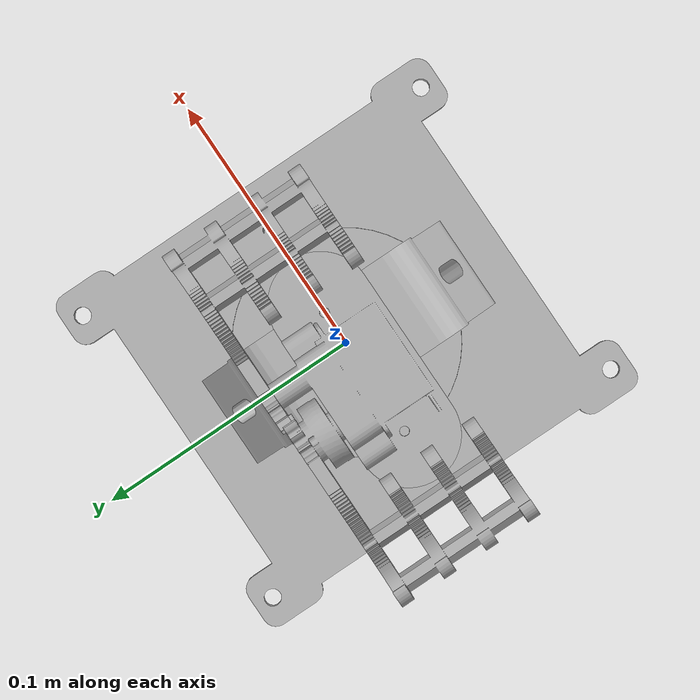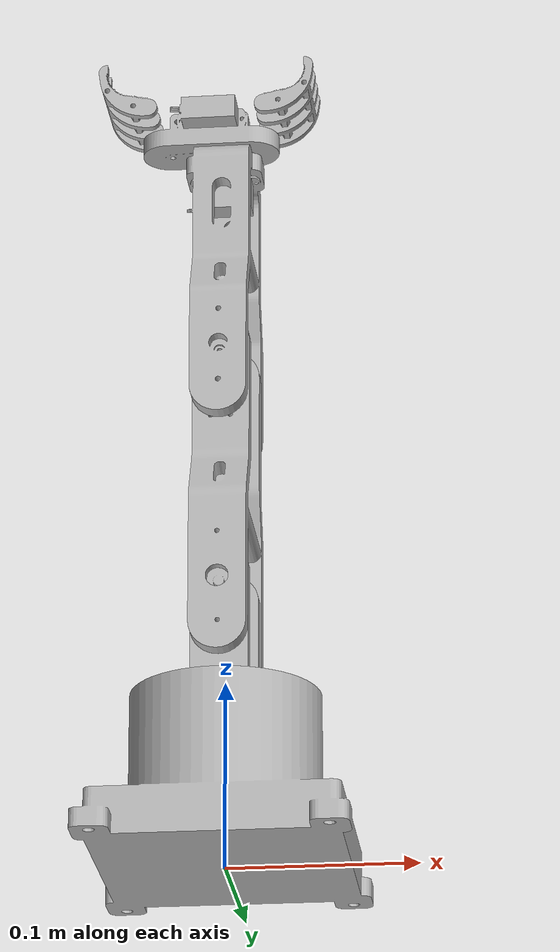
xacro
<?xml version="1.0" ?>
<robot name="usf_robot" xmlns:xacro="http://www.ros.org/wiki/xacro">

<xacro:include filename="$(find usf_robot_description)/urdf/materials.xacro" />
<xacro:include filename="$(find usf_robot_description)/urdf/usf_robot.trans" />
<xacro:include filename="$(find usf_robot_description)/urdf/usf_robot.gazebo" />
<link name="base_link">
  <inertial>
    <origin xyz="4.095840186019689e-05 -0.00047837113585616297 0.030465846604467023" rpy="0 0 0"/>
    <mass value="6.2514798322801415"/>
    <inertia ixx="0.01073" iyy="0.010393" izz="0.014172" ixy="-0.0" iyz="8e-06" ixz="0.0"/>
  </inertial>
  <visual>
    <origin xyz="0 0 0" rpy="0 0 0"/>
    <geometry>
      <mesh filename="file://$(find usf_robot_description)/meshes/base_link.stl" scale="0.001 0.001 0.001"/>
    </geometry>
    <material name="silver"/>
  </visual>
  <collision>
    <origin xyz="0 0 0" rpy="0 0 0"/>
    <geometry>
      <mesh filename="file://$(find usf_robot_description)/meshes/base_link.stl" scale="0.001 0.001 0.001"/>
    </geometry>
  </collision>
</link>

<link name="link0_1">
  <inertial>
    <origin xyz="-2.716259298227874e-06 -0.0010380049259447563 0.024075797292657686" rpy="0 0 0"/>
    <mass value="1.1929271090807336"/>
    <inertia ixx="0.001533" iyy="0.001298" izz="0.000904" ixy="1e-06" iyz="3.9e-05" ixz="-0.0"/>
  </inertial>
  <visual>
    <origin xyz="0.0002 0.000356 -0.07854" rpy="0 0 0"/>
    <geometry>
      <mesh filename="file://$(find usf_robot_description)/meshes/link0_1.stl" scale="0.001 0.001 0.001"/>
    </geometry>
    <material name="silver"/>
  </visual>
  <collision>
    <origin xyz="0.0002 0.000356 -0.07854" rpy="0 0 0"/>
    <geometry>
      <mesh filename="file://$(find usf_robot_description)/meshes/link0_1.stl" scale="0.001 0.001 0.001"/>
    </geometry>
  </collision>
</link>

<link name="link1_1">
  <inertial>
    <origin xyz="-0.1802469603530418 0.20467584818746778 -0.31872975492036304" rpy="0 0 0"/>
    <mass value="0.19172228733298213"/>
    <inertia ixx="0.000679" iyy="0.000532" izz="0.000173" ixy="0.0" iyz="1.7e-05" ixz="-1e-06"/>
  </inertial>
  <visual>
    <origin xyz="-0.180211 0.205134 -0.529867" rpy="0 0 0"/>
    <geometry>
      <mesh filename="file://$(find usf_robot_description)/meshes/link1_1.stl" scale="0.001 0.001 0.001"/>
    </geometry>
    <material name="silver"/>
  </visual>
  <collision>
    <origin xyz="-0.180211 0.205134 -0.529867" rpy="0 0 0"/>
    <geometry>
      <mesh filename="file://$(find usf_robot_description)/meshes/link1_1.stl" scale="0.001 0.001 0.001"/>
    </geometry>
  </collision>
</link>

<link name="link2_1">
  <inertial>
    <origin xyz="-0.0008459448150377875 0.03487723194290493 0.05901407198161318" rpy="0 0 0"/>
    <mass value="0.9310977870000888"/>
    <inertia ixx="0.002972" iyy="0.002261" izz="0.000867" ixy="-0.0" iyz="-2e-06" ixz="1e-05"/>
  </inertial>
  <visual>
    <origin xyz="-0.000411 0.034567 -0.272461" rpy="0 0 0"/>
    <geometry>
      <mesh filename="file://$(find usf_robot_description)/meshes/link2_1.stl" scale="0.001 0.001 0.001"/>
    </geometry>
    <material name="silver"/>
  </visual>
  <collision>
    <origin xyz="-0.000411 0.034567 -0.272461" rpy="0 0 0"/>
    <geometry>
      <mesh filename="file://$(find usf_robot_description)/meshes/link2_1.stl" scale="0.001 0.001 0.001"/>
    </geometry>
  </collision>
</link>

<link name="wrist_1">
  <inertial>
    <origin xyz="-0.0005413092492828724 0.0012694599894110235 0.01735230955560413" rpy="0 0 0"/>
    <mass value="0.27580026748282094"/>
    <inertia ixx="4.6e-05" iyy="0.000102" izz="9.7e-05" ixy="1e-06" iyz="-3e-06" ixz="1e-06"/>
  </inertial>
  <visual>
    <origin xyz="0.009156 -6.5e-05 -0.40079" rpy="0 0 0"/>
    <geometry>
      <mesh filename="file://$(find usf_robot_description)/meshes/wrist_1.stl" scale="0.001 0.001 0.001"/>
    </geometry>
    <material name="silver"/>
  </visual>
  <collision>
    <origin xyz="0.009156 -6.5e-05 -0.40079" rpy="0 0 0"/>
    <geometry>
      <mesh filename="file://$(find usf_robot_description)/meshes/wrist_1.stl" scale="0.001 0.001 0.001"/>
    </geometry>
  </collision>
</link>

<link name="claw0_1">
  <inertial>
    <origin xyz="0.029746498963837457 -0.015181296968975203 0.0037018851488843096" rpy="0 0 0"/>
    <mass value="0.06042467247708934"/>
    <inertia ixx="1.9e-05" iyy="1.7e-05" izz="2.8e-05" ixy="6e-06" iyz="1e-06" ixz="-4e-06"/>
  </inertial>
  <visual>
    <origin xyz="0.001497 -0.024737 -0.429729" rpy="0 0 0"/>
    <geometry>
      <mesh filename="file://$(find usf_robot_description)/meshes/claw0_1.stl" scale="0.001 0.001 0.001"/>
    </geometry>
    <material name="silver"/>
  </visual>
  <collision>
    <origin xyz="0.001497 -0.024737 -0.429729" rpy="0 0 0"/>
    <geometry>
      <mesh filename="file://$(find usf_robot_description)/meshes/claw0_1.stl" scale="0.001 0.001 0.001"/>
    </geometry>
  </collision>
</link>

<link name="claw1_1">
  <inertial>
    <origin xyz="-0.024769673493672317 -0.006850523309569284 0.0028712566060522526" rpy="0 0 0"/>
    <mass value="0.07705542391594017"/>
    <inertia ixx="2.2e-05" iyy="3.1e-05" izz="4.3e-05" ixy="-1e-05" iyz="1e-06" ixz="5e-06"/>
  </inertial>
  <visual>
    <origin xyz="0.017623 -0.016646 -0.42967" rpy="0 0 0"/>
    <geometry>
      <mesh filename="file://$(find usf_robot_description)/meshes/claw1_1.stl" scale="0.001 0.001 0.001"/>
    </geometry>
    <material name="silver"/>
  </visual>
  <collision>
    <origin xyz="0.017623 -0.016646 -0.42967" rpy="0 0 0"/>
    <geometry>
      <mesh filename="file://$(find usf_robot_description)/meshes/claw1_1.stl" scale="0.001 0.001 0.001"/>
    </geometry>
  </collision>
</link>

<joint name="link0_to_base_link" type="revolute">
  <origin xyz="-0.0002 -0.000356 0.07854" rpy="0 0 0"/>
  <parent link="base_link"/>
  <child link="link0_1"/>
  <axis xyz="-0.0 0.0 1.0"/>
  <limit upper="4.712389" lower="0.0" effort="100" velocity="100"/>
</joint>

<joint name="link1_to_link0" type="revolute">
  <origin xyz="0.180411 -0.204778 0.451327" rpy="0 0 0"/>
  <parent link="link0_1"/>
  <child link="link1_1"/>
  <axis xyz="0.0 -1.0 -0.0"/>
  <limit upper="1.570796" lower="-1.570796" effort="100" velocity="100"/>
</joint>

<joint name="link2_to_link1" type="revolute">
  <origin xyz="-0.1798 0.170567 -0.257406" rpy="0 0 0"/>
  <parent link="link1_1"/>
  <child link="link2_1"/>
  <axis xyz="-0.0 -1.0 -0.0"/>
  <limit upper="1.570796" lower="-1.570796" effort="100" velocity="100"/>
</joint>

<joint name="wrist_to_link2" type="revolute">
  <origin xyz="-0.009567 0.034632 0.128329" rpy="0 0 0"/>
  <parent link="link2_1"/>
  <child link="wrist_1"/>
  <axis xyz="-0.0 -0.0 1.0"/>
  <limit upper="4.712389" lower="0.0" effort="100" velocity="100"/>
</joint>

<joint name="claw0_to_wrist" type="revolute">
  <origin xyz="0.007659 0.024672 0.028939" rpy="0 0 0"/>
  <parent link="wrist_1"/>
  <child link="claw0_1"/>
  <axis xyz="0.0 -1.0 -0.0"/>
  <limit upper="1.134464" lower="-0.261799" effort="100" velocity="100"/>
</joint>

<joint name="claw1_to_wrist" type="revolute">
  <origin xyz="-0.008467 0.016581 0.02888" rpy="0 0 0"/>
  <parent link="wrist_1"/>
  <child link="claw1_1"/>
  <axis xyz="-0.0 1.0 0.0"/>
  <limit upper="1.134464" lower="-0.261799" effort="100" velocity="100"/>
</joint>

</robot>

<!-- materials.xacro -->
<robot name="usf_robot" xmlns:xacro="http://www.ros.org/wiki/xacro" >

<material name="silver">
  <color rgba="0.700 0.700 0.700 1.000"/>
</material>

</robot>

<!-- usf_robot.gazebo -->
<robot name="usf_robot" xmlns:xacro="http://www.ros.org/wiki/xacro" >

<xacro:property name="body_color" value="Gazebo/Silver" />

<gazebo>
  <plugin name="control" filename="libgazebo_ros_control.so"/>
</gazebo>
<gazebo reference="base_link">
  <material>${body_color}</material>
  <mu1>0.2</mu1>
  <mu2>0.2</mu2>
  <self_collide>true</self_collide>
  <gravity>true</gravity>
</gazebo>

<gazebo reference="link0_1">
  <material>${body_color}</material>
  <mu1>0.2</mu1>
  <mu2>0.2</mu2>
  <self_collide>true</self_collide>
</gazebo>

<gazebo reference="link1_1">
  <material>${body_color}</material>
  <mu1>0.2</mu1>
  <mu2>0.2</mu2>
  <self_collide>true</self_collide>
</gazebo>

<gazebo reference="link2_1">
  <material>${body_color}</material>
  <mu1>0.2</mu1>
  <mu2>0.2</mu2>
  <self_collide>true</self_collide>
</gazebo>

<gazebo reference="wrist_1">
  <material>${body_color}</material>
  <mu1>0.2</mu1>
  <mu2>0.2</mu2>
  <self_collide>true</self_collide>
</gazebo>

<gazebo reference="claw0_1">
  <material>${body_color}</material>
  <mu1>0.2</mu1>
  <mu2>0.2</mu2>
  <self_collide>true</self_collide>
</gazebo>

<gazebo reference="claw1_1">
  <material>${body_color}</material>
  <mu1>0.2</mu1>
  <mu2>0.2</mu2>
  <self_collide>true</self_collide>
</gazebo>

</robot>
